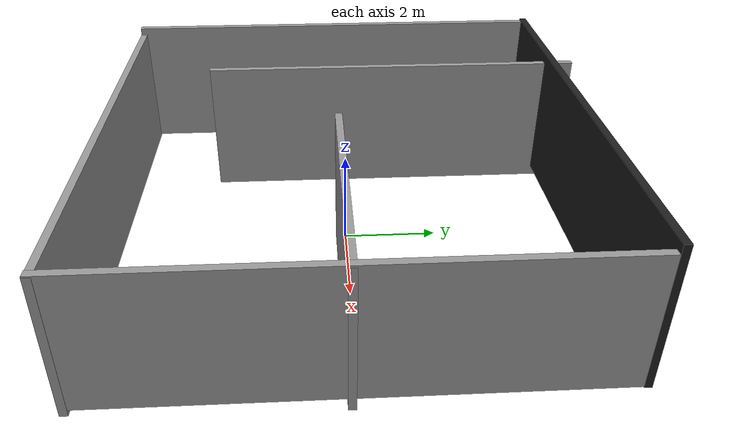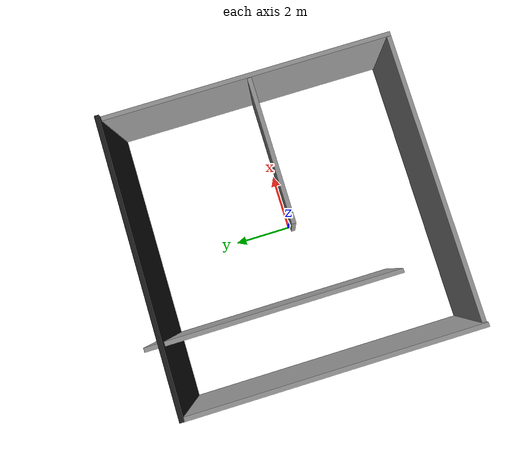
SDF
<?xml version='1.0'?>
<sdf version='1.7'>
  <model name='EmptyRoom'>
    <link name='Wall_1'>
      <pose>-4.94152 0.009527 1.17898 0 0 -1.5708</pose>
      <self_collide>0</self_collide>
      <enable_wind>0</enable_wind>
      <kinematic>0</kinematic>
      <inertial>
        <inertia>
          <ixx>0</ixx>
          <ixy>0</ixy>
          <ixz>0</ixz>
          <iyy>0</iyy>
          <iyz>0</iyz>
          <izz>0</izz>
        </inertia>
        <mass>0</mass>
        <pose>0 0 0 0 -0 0</pose>
      </inertial>
      <visual name='Wall_1_Visual'>
        <pose>0 0 0.5 0 -0 0</pose>
        <geometry>
          <box>
            <size>10 0.15 3.03912</size>
          </box>
        </geometry>
        <material>
          <script>
            <uri>file://media/materials/scripts/gazebo.material</uri>
            <name>Gazebo/Grey</name>
          </script>
          <ambient>1 1 1 1</ambient>
          <shader type='pixel'/>
        </material>
        <meta>
          <layer>0</layer>
        </meta>
        <transparency>0</transparency>
        <cast_shadows>1</cast_shadows>
      </visual>
      <collision name='Wall_1_Collision'>
        <laser_retro>0</laser_retro>
        <max_contacts>10</max_contacts>
        <pose>0 0 0.5 0 -0 0</pose>
        <geometry>
          <box>
            <size>10 0.15 3.03912</size>
          </box>
        </geometry>
        <surface>
          <friction>
            <ode>
              <mu>1</mu>
              <mu2>1</mu2>
              <fdir1>0 0 0</fdir1>
              <slip1>0</slip1>
              <slip2>0</slip2>
            </ode>
            <torsional>
              <coefficient>1</coefficient>
              <patch_radius>0</patch_radius>
              <surface_radius>0</surface_radius>
              <use_patch_radius>1</use_patch_radius>
              <ode>
                <slip>0</slip>
              </ode>
            </torsional>
          </friction>
          <bounce>
            <restitution_coefficient>0</restitution_coefficient>
            <threshold>1e+06</threshold>
          </bounce>
          <contact>
            <collide_without_contact>0</collide_without_contact>
            <collide_without_contact_bitmask>1</collide_without_contact_bitmask>
            <collide_bitmask>1</collide_bitmask>
            <ode>
              <soft_cfm>0</soft_cfm>
              <soft_erp>0.2</soft_erp>
              <kp>1e+13</kp>
              <kd>1</kd>
              <max_vel>0.01</max_vel>
              <min_depth>0</min_depth>
            </ode>
            <bullet>
              <split_impulse>1</split_impulse>
              <split_impulse_penetration_threshold>-0.01</split_impulse_penetration_threshold>
              <soft_cfm>0</soft_cfm>
              <soft_erp>0.2</soft_erp>
              <kp>1e+13</kp>
              <kd>1</kd>
            </bullet>
          </contact>
        </surface>
      </collision>
    </link>
    <link name='Wall_1_clone'>
      <pose>-2.59292 1.24894 0.989073 0 0 -1.5708</pose>
      <self_collide>0</self_collide>
      <enable_wind>0</enable_wind>
      <kinematic>0</kinematic>
      <inertial>
        <inertia>
          <ixx>0</ixx>
          <ixy>0</ixy>
          <ixz>0</ixz>
          <iyy>0</iyy>
          <iyz>0</iyz>
          <izz>0</izz>
        </inertia>
        <mass>0</mass>
        <pose>0 0 0 0 -0 0</pose>
      </inertial>
      <visual name='Wall_1_Visual'>
        <pose>0 0 0.5 0 -0 0</pose>
        <geometry>
          <box>
            <size>8.53616 0.15 3.03912</size>
          </box>
        </geometry>
        <material>
          <script>
            <uri>file://media/materials/scripts/gazebo.material</uri>
            <name>Gazebo/Grey</name>
          </script>
          <ambient>1 1 1 1</ambient>
          <shader type='pixel'/>
        </material>
        <meta>
          <layer>0</layer>
        </meta>
        <transparency>0</transparency>
        <cast_shadows>1</cast_shadows>
      </visual>
      <collision name='Wall_1_Collision'>
        <laser_retro>0</laser_retro>
        <max_contacts>10</max_contacts>
        <pose>0 0 0.5 0 -0 0</pose>
        <geometry>
          <box>
            <size>8.53616 0.15 3.03912</size>
          </box>
        </geometry>
        <surface>
          <friction>
            <ode>
              <mu>1</mu>
              <mu2>1</mu2>
              <fdir1>0 0 0</fdir1>
              <slip1>0</slip1>
              <slip2>0</slip2>
            </ode>
            <torsional>
              <coefficient>1</coefficient>
              <patch_radius>0</patch_radius>
              <surface_radius>0</surface_radius>
              <use_patch_radius>1</use_patch_radius>
              <ode>
                <slip>0</slip>
              </ode>
            </torsional>
          </friction>
          <bounce>
            <restitution_coefficient>0</restitution_coefficient>
            <threshold>1e+06</threshold>
          </bounce>
          <contact>
            <collide_without_contact>0</collide_without_contact>
            <collide_without_contact_bitmask>1</collide_without_contact_bitmask>
            <collide_bitmask>1</collide_bitmask>
            <ode>
              <soft_cfm>0</soft_cfm>
              <soft_erp>0.2</soft_erp>
              <kp>1e+13</kp>
              <kd>1</kd>
              <max_vel>0.01</max_vel>
              <min_depth>0</min_depth>
            </ode>
            <bullet>
              <split_impulse>1</split_impulse>
              <split_impulse_penetration_threshold>-0.01</split_impulse_penetration_threshold>
              <soft_cfm>0</soft_cfm>
              <soft_erp>0.2</soft_erp>
              <kp>1e+13</kp>
              <kd>1</kd>
            </bullet>
          </contact>
        </surface>
      </collision>
    </link>
    <link name='Wall_1_clone_clone'>
      <pose>2.41978 -0.128976 0.989073 0 -0 3.14159</pose>
      <self_collide>0</self_collide>
      <enable_wind>0</enable_wind>
      <kinematic>0</kinematic>
      <inertial>
        <inertia>
          <ixx>0</ixx>
          <ixy>0</ixy>
          <ixz>0</ixz>
          <iyy>0</iyy>
          <iyz>0</iyz>
          <izz>0</izz>
        </inertia>
        <mass>0</mass>
        <pose>0 0 0 0 -0 0</pose>
      </inertial>
      <visual name='Wall_1_Visual'>
        <pose>0 0 0.5 0 -0 0</pose>
        <geometry>
          <box>
            <size>5.15413 0.15 3.03912</size>
          </box>
        </geometry>
        <material>
          <script>
            <uri>file://media/materials/scripts/gazebo.material</uri>
            <name>Gazebo/Grey</name>
          </script>
          <ambient>1 1 1 1</ambient>
          <shader type='pixel'/>
        </material>
        <meta>
          <layer>0</layer>
        </meta>
        <transparency>0</transparency>
        <cast_shadows>1</cast_shadows>
      </visual>
      <collision name='Wall_1_Collision'>
        <laser_retro>0</laser_retro>
        <max_contacts>10</max_contacts>
        <pose>0 0 0.5 0 -0 0</pose>
        <geometry>
          <box>
            <size>5.15413 0.15 3.03912</size>
          </box>
        </geometry>
        <surface>
          <friction>
            <ode>
              <mu>1</mu>
              <mu2>1</mu2>
              <fdir1>0 0 0</fdir1>
              <slip1>0</slip1>
              <slip2>0</slip2>
            </ode>
            <torsional>
              <coefficient>1</coefficient>
              <patch_radius>0</patch_radius>
              <surface_radius>0</surface_radius>
              <use_patch_radius>1</use_patch_radius>
              <ode>
                <slip>0</slip>
              </ode>
            </torsional>
          </friction>
          <bounce>
            <restitution_coefficient>0</restitution_coefficient>
            <threshold>1e+06</threshold>
          </bounce>
          <contact>
            <collide_without_contact>0</collide_without_contact>
            <collide_without_contact_bitmask>1</collide_without_contact_bitmask>
            <collide_bitmask>1</collide_bitmask>
            <ode>
              <soft_cfm>0</soft_cfm>
              <soft_erp>0.2</soft_erp>
              <kp>1e+13</kp>
              <kd>1</kd>
              <max_vel>0.01</max_vel>
              <min_depth>0</min_depth>
            </ode>
            <bullet>
              <split_impulse>1</split_impulse>
              <split_impulse_penetration_threshold>-0.01</split_impulse_penetration_threshold>
              <soft_cfm>0</soft_cfm>
              <soft_erp>0.2</soft_erp>
              <kp>1e+13</kp>
              <kd>1</kd>
            </bullet>
          </contact>
        </surface>
      </collision>
    </link>
    <link name='Wall_2'>
      <pose>0 -4.925 1.06805 0 -0 0</pose>
      <self_collide>0</self_collide>
      <enable_wind>0</enable_wind>
      <kinematic>0</kinematic>
      <inertial>
        <inertia>
          <ixx>0</ixx>
          <ixy>0</ixy>
          <ixz>0</ixz>
          <iyy>0</iyy>
          <iyz>0</iyz>
          <izz>0</izz>
        </inertia>
        <mass>0</mass>
        <pose>0 0 0 0 -0 0</pose>
      </inertial>
      <visual name='Wall_2_Visual'>
        <pose>0 0 0.5 0 -0 0</pose>
        <geometry>
          <box>
            <size>10 0.15 2.91967</size>
          </box>
        </geometry>
        <material>
          <script>
            <uri>file://media/materials/scripts/gazebo.material</uri>
            <name>Gazebo/Grey</name>
          </script>
          <ambient>1 1 1 1</ambient>
          <shader type='pixel'/>
        </material>
        <meta>
          <layer>0</layer>
        </meta>
        <transparency>0</transparency>
        <cast_shadows>1</cast_shadows>
      </visual>
      <collision name='Wall_2_Collision'>
        <laser_retro>0</laser_retro>
        <max_contacts>10</max_contacts>
        <pose>0 0 0.5 0 -0 0</pose>
        <geometry>
          <box>
            <size>10 0.15 2.91967</size>
          </box>
        </geometry>
        <surface>
          <friction>
            <ode>
              <mu>1</mu>
              <mu2>1</mu2>
              <fdir1>0 0 0</fdir1>
              <slip1>0</slip1>
              <slip2>0</slip2>
            </ode>
            <torsional>
              <coefficient>1</coefficient>
              <patch_radius>0</patch_radius>
              <surface_radius>0</surface_radius>
              <use_patch_radius>1</use_patch_radius>
              <ode>
                <slip>0</slip>
              </ode>
            </torsional>
          </friction>
          <bounce>
            <restitution_coefficient>0</restitution_coefficient>
            <threshold>1e+06</threshold>
          </bounce>
          <contact>
            <collide_without_contact>0</collide_without_contact>
            <collide_without_contact_bitmask>1</collide_without_contact_bitmask>
            <collide_bitmask>1</collide_bitmask>
            <ode>
              <soft_cfm>0</soft_cfm>
              <soft_erp>0.2</soft_erp>
              <kp>1e+13</kp>
              <kd>1</kd>
              <max_vel>0.01</max_vel>
              <min_depth>0</min_depth>
            </ode>
            <bullet>
              <split_impulse>1</split_impulse>
              <split_impulse_penetration_threshold>-0.01</split_impulse_penetration_threshold>
              <soft_cfm>0</soft_cfm>
              <soft_erp>0.2</soft_erp>
              <kp>1e+13</kp>
              <kd>1</kd>
            </bullet>
          </contact>
        </surface>
      </collision>
    </link>
    <link name='Wall_3'>
      <pose>4.91924 0.00309 1.14348 0 -0 1.5708</pose>
      <self_collide>0</self_collide>
      <enable_wind>0</enable_wind>
      <kinematic>0</kinematic>
      <inertial>
        <inertia>
          <ixx>0</ixx>
          <ixy>0</ixy>
          <ixz>0</ixz>
          <iyy>0</iyy>
          <iyz>0</iyz>
          <izz>0</izz>
        </inertia>
        <mass>0</mass>
        <pose>0 0 0 0 -0 0</pose>
      </inertial>
      <visual name='Wall_3_Visual'>
        <pose>0 0 0.5 0 -0 0</pose>
        <geometry>
          <box>
            <size>10 0.15 2.81192</size>
          </box>
        </geometry>
        <material>
          <script>
            <uri>file://media/materials/scripts/gazebo.material</uri>
            <name>Gazebo/Grey</name>
          </script>
          <ambient>1 1 1 1</ambient>
          <shader type='pixel'/>
        </material>
        <meta>
          <layer>0</layer>
        </meta>
        <transparency>0</transparency>
        <cast_shadows>1</cast_shadows>
      </visual>
      <collision name='Wall_3_Collision'>
        <laser_retro>0</laser_retro>
        <max_contacts>10</max_contacts>
        <pose>0 0 0.5 0 -0 0</pose>
        <geometry>
          <box>
            <size>10 0.15 2.81192</size>
          </box>
        </geometry>
        <surface>
          <friction>
            <ode>
              <mu>1</mu>
              <mu2>1</mu2>
              <fdir1>0 0 0</fdir1>
              <slip1>0</slip1>
              <slip2>0</slip2>
            </ode>
            <torsional>
              <coefficient>1</coefficient>
              <patch_radius>0</patch_radius>
              <surface_radius>0</surface_radius>
              <use_patch_radius>1</use_patch_radius>
              <ode>
                <slip>0</slip>
              </ode>
            </torsional>
          </friction>
          <bounce>
            <restitution_coefficient>0</restitution_coefficient>
            <threshold>1e+06</threshold>
          </bounce>
          <contact>
            <collide_without_contact>0</collide_without_contact>
            <collide_without_contact_bitmask>1</collide_without_contact_bitmask>
            <collide_bitmask>1</collide_bitmask>
            <ode>
              <soft_cfm>0</soft_cfm>
              <soft_erp>0.2</soft_erp>
              <kp>1e+13</kp>
              <kd>1</kd>
              <max_vel>0.01</max_vel>
              <min_depth>0</min_depth>
            </ode>
            <bullet>
              <split_impulse>1</split_impulse>
              <split_impulse_penetration_threshold>-0.01</split_impulse_penetration_threshold>
              <soft_cfm>0</soft_cfm>
              <soft_erp>0.2</soft_erp>
              <kp>1e+13</kp>
              <kd>1</kd>
            </bullet>
          </contact>
        </surface>
      </collision>
    </link>
    <link name='Wall_4'>
      <pose>0 4.925 1.22875 0 -0 3.14159</pose>
      <self_collide>0</self_collide>
      <enable_wind>0</enable_wind>
      <kinematic>0</kinematic>
      <inertial>
        <inertia>
          <ixx>0</ixx>
          <ixy>0</ixy>
          <ixz>0</ixz>
          <iyy>0</iyy>
          <iyz>0</iyz>
          <izz>0</izz>
        </inertia>
        <mass>0</mass>
        <pose>0 0 0 0 -0 0</pose>
      </inertial>
      <gravity>1</gravity>
      <visual name='Wall_4_Visual'>
        <pose>0 0 0.5 0 -0 0</pose>
        <geometry>
          <box>
            <size>10 0.15 3.02138</size>
          </box>
        </geometry>
        <material>
          <script>
            <uri>file://media/materials/scripts/gazebo.material</uri>
            <name>Gazebo/Black</name>
          </script>
          <ambient>1 1 1 1</ambient>
          <shader type='pixel'>
            <normal_map>__default__</normal_map>
          </shader>
          <diffuse>0.7 0.7 0.7 1</diffuse>
          <specular>0.01 0.01 0.01 1</specular>
          <emissive>0 0 0 1</emissive>
        </material>
        <meta>
          <layer>0</layer>
        </meta>
        <transparency>0</transparency>
        <cast_shadows>1</cast_shadows>
      </visual>
      <collision name='Wall_4_Collision'>
        <laser_retro>0</laser_retro>
        <max_contacts>10</max_contacts>
        <pose>0 0 0.5 0 -0 0</pose>
        <geometry>
          <box>
            <size>10 0.15 3.02138</size>
          </box>
        </geometry>
        <surface>
          <friction>
            <ode>
              <mu>1</mu>
              <mu2>1</mu2>
              <fdir1>0 0 0</fdir1>
              <slip1>0</slip1>
              <slip2>0</slip2>
            </ode>
            <torsional>
              <coefficient>1</coefficient>
              <patch_radius>0</patch_radius>
              <surface_radius>0</surface_radius>
              <use_patch_radius>1</use_patch_radius>
              <ode>
                <slip>0</slip>
              </ode>
            </torsional>
          </friction>
          <bounce>
            <restitution_coefficient>0</restitution_coefficient>
            <threshold>1e+06</threshold>
          </bounce>
          <contact>
            <collide_without_contact>0</collide_without_contact>
            <collide_without_contact_bitmask>1</collide_without_contact_bitmask>
            <collide_bitmask>1</collide_bitmask>
            <ode>
              <soft_cfm>0</soft_cfm>
              <soft_erp>0.2</soft_erp>
              <kp>1e+13</kp>
              <kd>1</kd>
              <max_vel>0.01</max_vel>
              <min_depth>0</min_depth>
            </ode>
            <bullet>
              <split_impulse>1</split_impulse>
              <split_impulse_penetration_threshold>-0.01</split_impulse_penetration_threshold>
              <soft_cfm>0</soft_cfm>
              <soft_erp>0.2</soft_erp>
              <kp>1e+13</kp>
              <kd>1</kd>
            </bullet>
          </contact>
        </surface>
      </collision>
    </link>
    <static>1</static>
    <allow_auto_disable>1</allow_auto_disable>
  </model>
</sdf>
